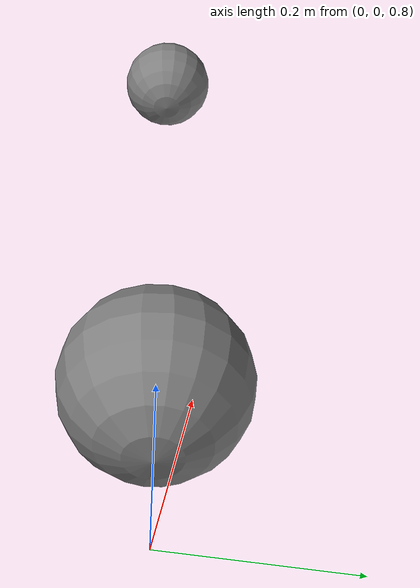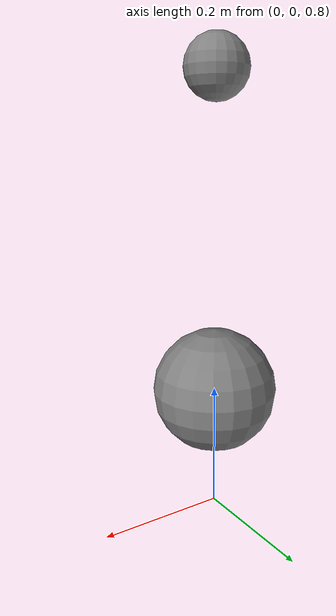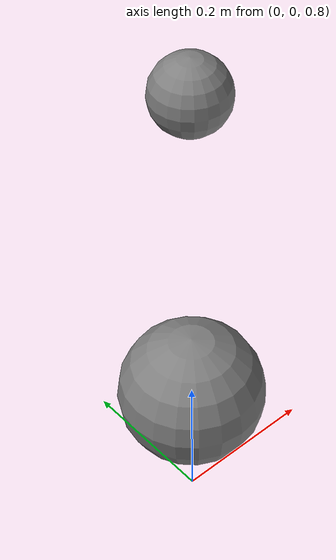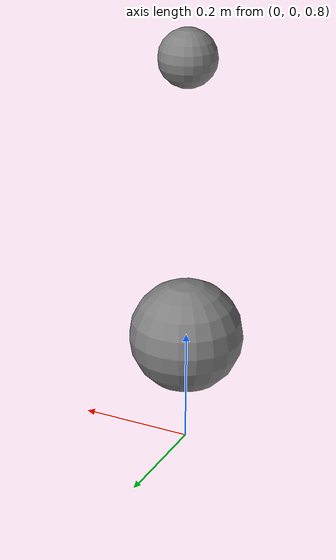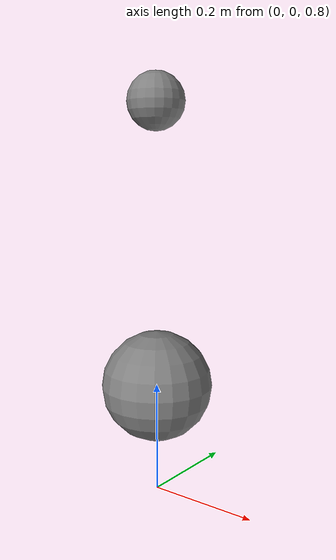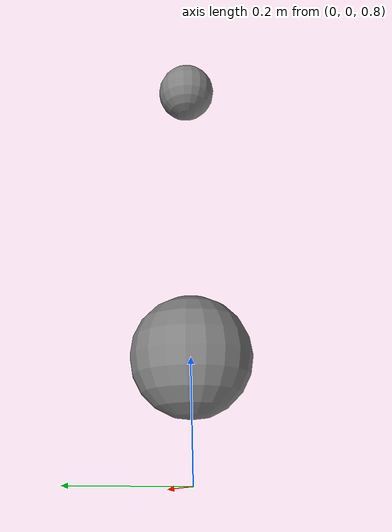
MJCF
<mujoco model="bad_mocap_nested">
        <option gravity="0 0 -9.81" timestep="0.002"/>
        <worldbody>
            <body name="parent" pos="0 0 1">
                <joint name="hinge" type="hinge" axis="0 1 0"/>
                <geom type="sphere" size="0.1" mass="1.0"/>
                <body name="nested_mocap" mocap="true" pos="0 0 0.5">
                    <geom type="sphere" size="0.05" mass="0.1"/>
                </body>
            </body>
        </worldbody>
    </mujoco>
